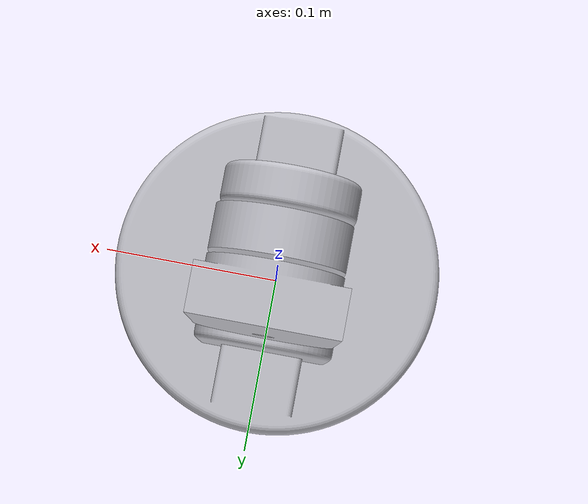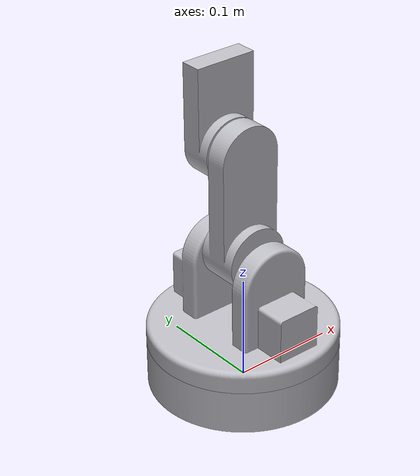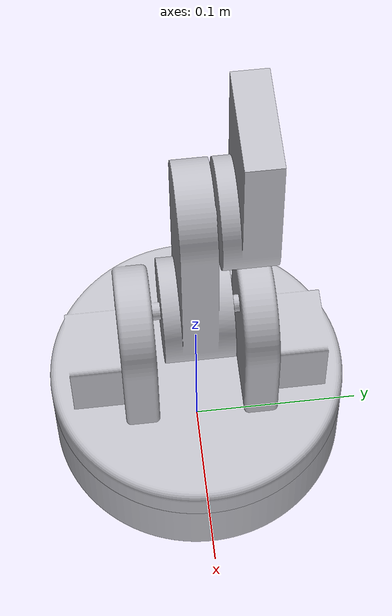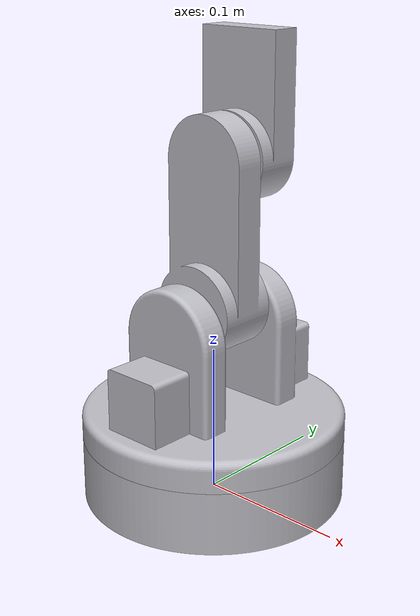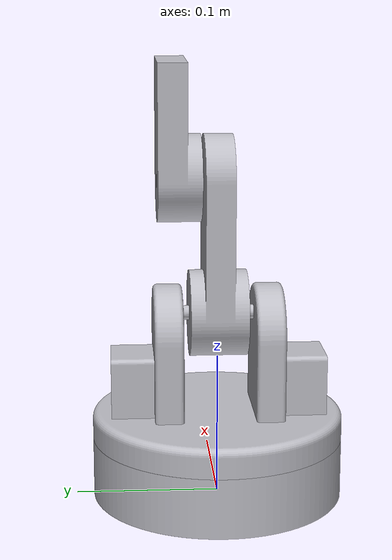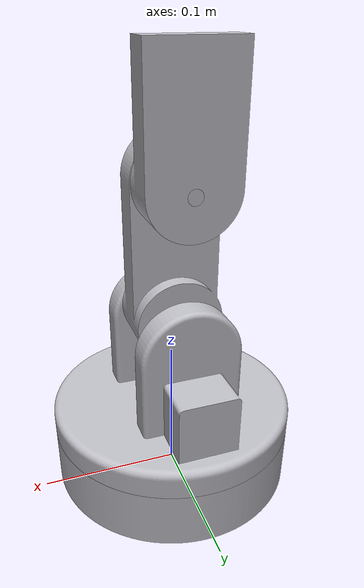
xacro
<?xml version="1.0"?>

<robot name="spartan_description" xmlns:xacro="http://www.ros.org/wiki/xacro">

    <xacro:include filename="$(find spartan_description)/urdf/mech/materials.xacro" />
    <xacro:include filename="$(find spartan_description)/urdf/mech/links.trans" />
    <xacro:include filename="$(find spartan_description)/urdf/mech/gazeboreference.xacro" />

    <xacro:include filename="$(find spartan_description)/urdf/mech/base.urdf.xacro"/>

    <!-- ================= Robotic Arm ================= -->

    <link name="base_link">
        <inertial>
            <origin xyz="-1.7801871495357475e-17 0.0 0.021" rpy="0 0 0" />
            <mass value="1.0371236783056947" />
            <inertia ixx="0.00216" iyy="0.00216" izz="0.004016" ixy="0.0" iyz="0.0" ixz="-0.0" />
        </inertial>
        <visual>
            <origin xyz="0 0 0" rpy="0 0 0" />
            <geometry>
                <mesh filename="package://spartan_description/meshes/base_link.stl"
                    scale="0.001 0.001 0.001" />
            </geometry>
            <material name="silver" />
        </visual>
        <collision>
            <origin xyz="0 0 0" rpy="0 0 0" />
            <geometry>
                <mesh filename="package://spartan_description/meshes/base_link.stl"
                    scale="0.001 0.001 0.001" />
            </geometry>
        </collision>
    </link>

    <link name="shoulder_joint_1">
        <inertial>
            <origin xyz="-1.1058193531197054e-17 -2.2116387062394108e-17 0.028693112951202672"
                rpy="0 0 0" />
            <mass value="0.8347992099208558" />
            <inertia ixx="0.002257" iyy="0.001671" izz="0.002679" ixy="-0.0" iyz="-0.0" ixz="-0.0" />
        </inertial>
        <visual>
            <origin xyz="-0.0 -0.0 -0.042" rpy="0 0 0" />
            <geometry>
                <mesh filename="package://spartan_description/meshes/shoulder_joint_1.stl"
                    scale="0.001 0.001 0.001" />
            </geometry>
            <material name="silver" />
        </visual>
        <collision>
            <origin xyz="-0.0 -0.0 -0.042" rpy="0 0 0" />
            <geometry>
                <mesh filename="package://spartan_description/meshes/shoulder_joint_1.stl"
                    scale="0.001 0.001 0.001" />
            </geometry>
        </collision>
    </link>

    <link name="shoulder_link_1">
        <inertial>
            <origin xyz="-6.525965052388168e-15 0.00028853892713764614 0.036803251637408"
                rpy="0 0 0" />
            <mass value="0.22986605225349233" />
            <inertia ixx="0.000434" iyy="0.000474" izz="8.1e-05" ixy="0.0" iyz="-4e-06" ixz="0.0" />
        </inertial>
        <visual>
            <origin xyz="-0.0 -0.0 -0.132" rpy="0 0 0" />
            <geometry>
                <mesh filename="package://spartan_description/meshes/shoulder_link_1.stl"
                    scale="0.001 0.001 0.001" />
            </geometry>
            <material name="silver" />
        </visual>
        <collision>
            <origin xyz="-0.0 -0.0 -0.132" rpy="0 0 0" />
            <geometry>
                <mesh filename="package://spartan_description/meshes/shoulder_link_1.stl"
                    scale="0.001 0.001 0.001" />
            </geometry>
        </collision>
    </link>

    <link name="elbow_link_1">
        <inertial>
            <origin xyz="8.210853317301837e-15 0.0032546291648698454 0.02520164796922139"
                rpy="0 0 0" />
            <mass value="0.1524453603735402" />
            <inertia ixx="0.000148" iyy="0.000181" izz="5.2e-05" ixy="0.0" iyz="-1e-05" ixz="0.0" />
        </inertial>
        <visual>
            <origin xyz="-0.0 -0.026 -0.225" rpy="0 0 0" />
            <geometry>
                <mesh filename="package://spartan_description/meshes/elbow_link_1.stl"
                    scale="0.001 0.001 0.001" />
            </geometry>
            <material name="silver" />
        </visual>
        <collision>
            <origin xyz="-0.0 -0.026 -0.225" rpy="0 0 0" />
            <geometry>
                <mesh filename="package://spartan_description/meshes/elbow_link_1.stl"
                    scale="0.001 0.001 0.001" />
            </geometry>
        </collision>
    </link>

    <joint name="Revolute 1" type="continuous">
        <origin xyz="0.0 0.0 0.042" rpy="0 0 0" />
        <parent link="base_link" />
        <child link="shoulder_joint_1" />
        <axis xyz="0.0 0.0 1.0" />
    </joint>

    <joint name="Revolute 2" type="revolute">
        <origin xyz="0.0 0.0 0.09" rpy="0 0 0" />
        <parent link="shoulder_joint_1" />
        <child link="shoulder_link_1" />
        <axis xyz="0.0 -1.0 0.0" />
        <limit upper="1.570796" lower="-1.570796" effort="100" velocity="100" />
    </joint>

    <joint name="Revolute 3" type="continuous">
        <origin xyz="0.0 0.026 0.093" rpy="0 0 0" />
        <parent link="shoulder_link_1" />
        <child link="elbow_link_1" />
        <axis xyz="0.0 1.0 0.0" />
    </joint>

</robot>

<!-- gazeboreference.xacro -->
<robot name="(Unsaved)" xmlns:xacro="http://www.ros.org/wiki/xacro">

    <xacro:property name="body_color" value="Gazebo/Silver" />

    <gazebo>
        <plugin name="control" filename="libgazebo_ros_control.so" />
    </gazebo>
    <gazebo reference="base_link">
        <material>${body_color}</material>
        <mu1>0.2</mu1>
        <mu2>0.2</mu2>
        <self_collide>true</self_collide>
        <gravity>true</gravity>
    </gazebo>

    <gazebo reference="shoulder_joint_1">
        <material>${body_color}</material>
        <mu1>0.2</mu1>
        <mu2>0.2</mu2>
        <self_collide>true</self_collide>
    </gazebo>

    <gazebo reference="shoulder_link_1">
        <material>${body_color}</material>
        <mu1>0.2</mu1>
        <mu2>0.2</mu2>
        <self_collide>true</self_collide>
    </gazebo>

    <gazebo reference="elbow_link_1">
        <material>${body_color}</material>
        <mu1>0.2</mu1>
        <mu2>0.2</mu2>
        <self_collide>true</self_collide>
    </gazebo>

</robot>
